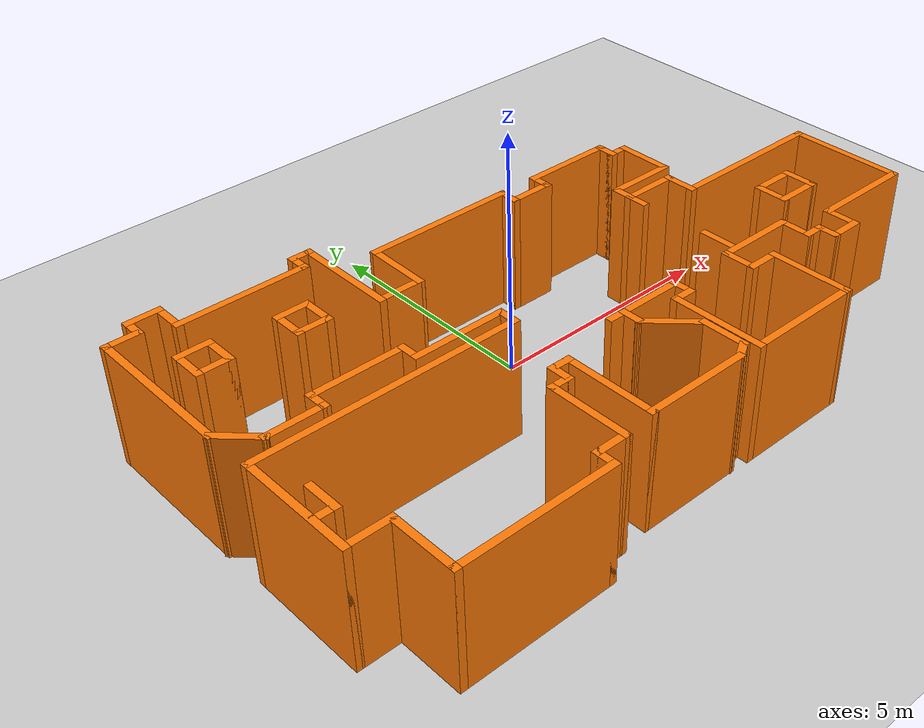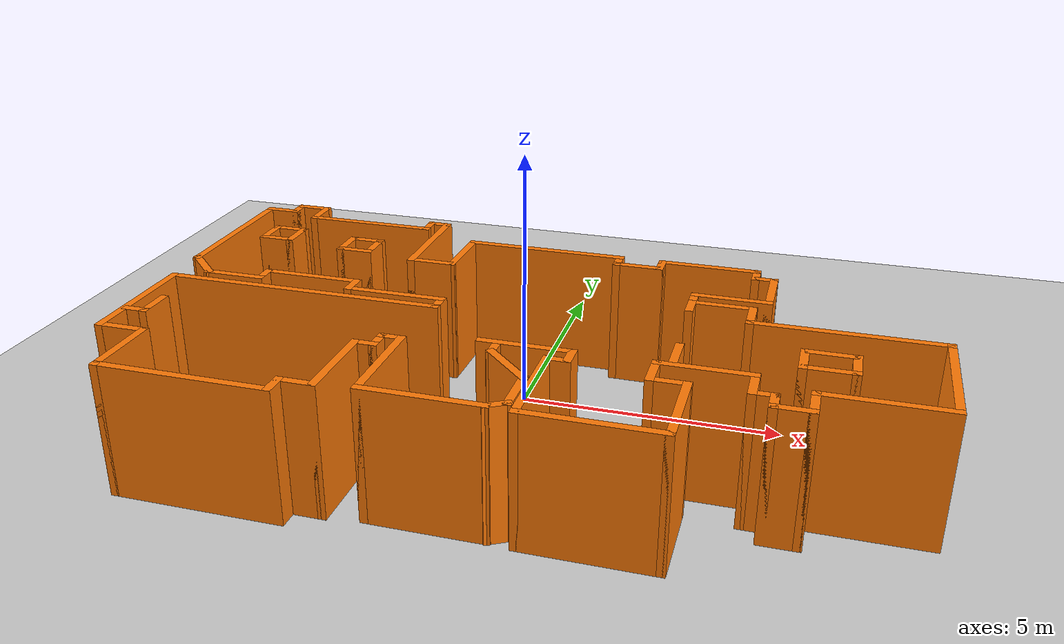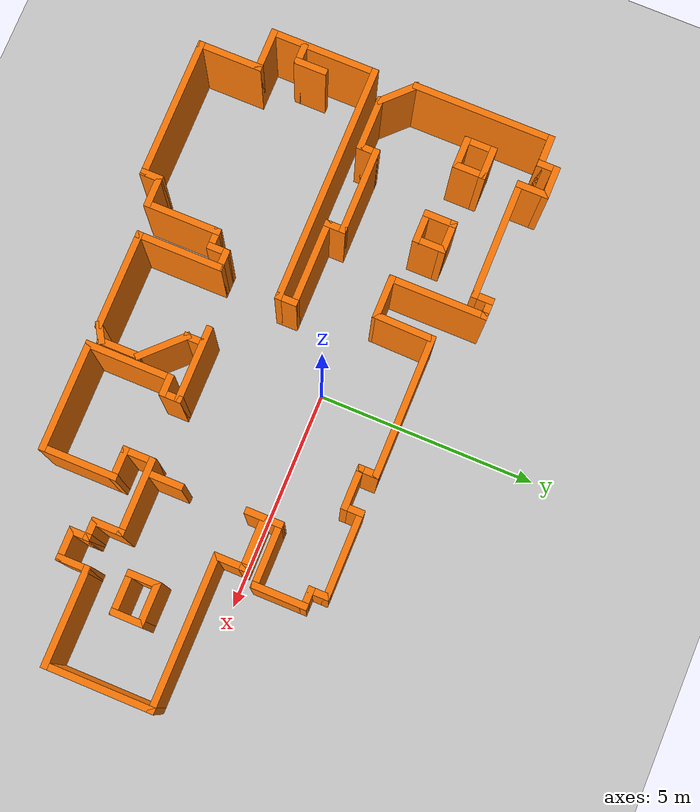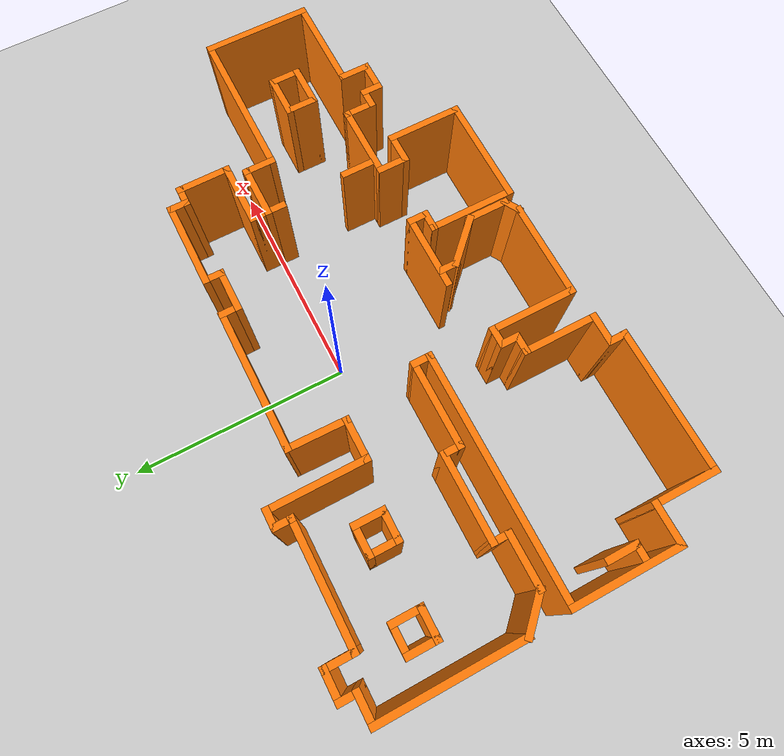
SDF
<sdf version="1.6">
 <world name="default">
  <model name="ground_plane">
   <static>1</static>
   <link name="link">
    <collision name="collision">
     <geometry><plane><normal>0 0 1</normal><size>100 100</size></plane></geometry>
     <surface>
      <contact><collide_bitmask>65535</collide_bitmask></contact>
      <friction><ode><mu>100</mu><mu2>50</mu2></ode></friction>
     </surface>
    </collision>
    <visual name="visual">
     <cast_shadows>0</cast_shadows>
     <geometry><plane><normal>0 0 1</normal><size>100 100</size></plane></geometry>
     <material>
      <script><uri>file://media/materials/scripts/gazebo.material</uri><name>Gazebo/Grey</name></script>
     </material>
    </visual>
   </link>
  </model>
  <model name="map_88">
   <pose>0.464336 -1.14312 0 0 -0 0</pose>
   <link name="Wall_1">
    <collision name="Wall_1_Collision">
     <geometry><box><size>0.5 0.15 2.5</size></box></geometry>
     <pose>0 0 1.25 0 -0 0</pose>
    </collision>
    <visual name="Wall_1_Visual">
     <pose>0 0 1.25 0 -0 0</pose>
     <geometry><box><size>0.5 0.15 2.5</size></box></geometry>
     <material>
      <script><uri>file://media/materials/scripts/gazebo.material</uri><name>Gazebo/Grey</name></script>
      <ambient>0.996078 0.47451 0.0196078 1</ambient>
     </material>
     <meta><layer>0</layer></meta>
    </visual>
    <pose>-3.14645 3.80052 0 0 -0 3.14159</pose>
   </link>
   <link name="Wall_10">
    <collision name="Wall_10_Collision">
     <geometry><box><size>1.25 0.15 2.5</size></box></geometry>
     <pose>0 0 1.25 0 -0 0</pose>
    </collision>
    <visual name="Wall_10_Visual">
     <pose>0 0 1.25 0 -0 0</pose>
     <geometry><box><size>1.25 0.15 2.5</size></box></geometry>
     <material>
      <script><uri>file://media/materials/scripts/gazebo.material</uri><name>Gazebo/Grey</name></script>
      <ambient>0.996078 0.47451 0.0196078 1</ambient>
     </material>
     <meta><layer>0</layer></meta>
    </visual>
    <pose>-5.97041 -0.00052 0 0 -0 0</pose>
   </link>
   <link name="Wall_100">
    <collision name="Wall_100_Collision">
     <geometry><box><size>0.75 0.15 2.5</size></box></geometry>
     <pose>0 0 1.25 0 -0 0</pose>
    </collision>
    <visual name="Wall_100_Visual">
     <pose>0 0 1.25 0 -0 0</pose>
     <geometry><box><size>0.75 0.15 2.5</size></box></geometry>
     <material>
      <script><uri>file://media/materials/scripts/gazebo.material</uri><name>Gazebo/Grey</name></script>
      <ambient>0.996078 0.47451 0.0196078 1</ambient>
     </material>
     <meta><layer>0</layer></meta>
    </visual>
    <pose>-4.27435 2.46761 0 0 -0 3.14159</pose>
   </link>
   <link name="Wall_11">
    <collision name="Wall_11_Collision">
     <geometry><box><size>0.5 0.15 2.5</size></box></geometry>
     <pose>0 0 1.25 0 -0 0</pose>
    </collision>
    <visual name="Wall_11_Visual">
     <pose>0 0 1.25 0 -0 0</pose>
     <geometry><box><size>0.5 0.15 2.5</size></box></geometry>
     <material>
      <script><uri>file://media/materials/scripts/gazebo.material</uri><name>Gazebo/Grey</name></script>
      <ambient>0.996078 0.47451 0.0196078 1</ambient>
     </material>
     <meta><layer>0</layer></meta>
    </visual>
    <pose>-5.42041 0.17448 0 0 -0 1.5708</pose>
   </link>
   <link name="Wall_110">
    <collision name="Wall_110_Collision">
     <geometry><box><size>1.75 0.15 2.5</size></box></geometry>
     <pose>0 0 1.25 0 -0 0</pose>
    </collision>
    <visual name="Wall_110_Visual">
     <pose>0 0 1.25 0 -0 0</pose>
     <geometry><box><size>1.75 0.15 2.5</size></box></geometry>
     <material>
      <script><uri>file://media/materials/scripts/gazebo.material</uri><name>Gazebo/Grey</name></script>
      <ambient>0.996078 0.47451 0.0196078 1</ambient>
     </material>
     <meta><layer>0</layer></meta>
    </visual>
    <pose>-2.52041 -2.90052 0 0 -0 1.5708</pose>
   </link>
   <link name="Wall_111">
    <collision name="Wall_111_Collision">
     <geometry><box><size>0.5 0.15 2.5</size></box></geometry>
     <pose>0 0 1.25 0 -0 0</pose>
    </collision>
    <visual name="Wall_111_Visual">
     <pose>0 0 1.25 0 -0 0</pose>
     <geometry><box><size>0.5 0.15 2.5</size></box></geometry>
     <material>
      <script><uri>file://media/materials/scripts/gazebo.material</uri><name>Gazebo/Grey</name></script>
      <ambient>0.996078 0.47451 0.0196078 1</ambient>
     </material>
     <meta><layer>0</layer></meta>
    </visual>
    <pose>-2.34541 -2.10052 0 0 -0 0</pose>
   </link>
   <link name="Wall_112">
    <collision name="Wall_112_Collision">
     <geometry><box><size>0.5 0.15 2.5</size></box></geometry>
     <pose>0 0 1.25 0 -0 0</pose>
    </collision>
    <visual name="Wall_112_Visual">
     <pose>0 0 1.25 0 -0 0</pose>
     <geometry><box><size>0.5 0.15 2.5</size></box></geometry>
     <material>
      <script><uri>file://media/materials/scripts/gazebo.material</uri><name>Gazebo/Grey</name></script>
      <ambient>0.996078 0.47451 0.0196078 1</ambient>
     </material>
     <meta><layer>0</layer></meta>
    </visual>
    <pose>-2.17041 -1.92552 0 0 -0 1.5708</pose>
   </link>
   <link name="Wall_113">
    <collision name="Wall_113_Collision">
     <geometry><box><size>0.5 0.15 2.5</size></box></geometry>
     <pose>0 0 1.25 0 -0 0</pose>
    </collision>
    <visual name="Wall_113_Visual">
     <pose>0 0 1.25 0 -0 0</pose>
     <geometry><box><size>0.5 0.15 2.5</size></box></geometry>
     <material>
      <script><uri>file://media/materials/scripts/gazebo.material</uri><name>Gazebo/Grey</name></script>
      <ambient>0.996078 0.47451 0.0196078 1</ambient>
     </material>
     <meta><layer>0</layer></meta>
    </visual>
    <pose>-1.99541 -1.75052 0 0 -0 0</pose>
   </link>
   <link name="Wall_114">
    <collision name="Wall_114_Collision">
     <geometry><box><size>2 0.15 2.5</size></box></geometry>
     <pose>0 0 1.25 0 -0 0</pose>
    </collision>
    <visual name="Wall_114_Visual">
     <pose>0 0 1.25 0 -0 0</pose>
     <geometry><box><size>2 0.15 2.5</size></box></geometry>
     <material>
      <script><uri>file://media/materials/scripts/gazebo.material</uri><name>Gazebo/Grey</name></script>
      <ambient>0.996078 0.47451 0.0196078 1</ambient>
     </material>
     <meta><layer>0</layer></meta>
    </visual>
    <pose>-1.82041 -2.67552 0 0 -0 -1.5708</pose>
   </link>
   <link name="Wall_12">
    <collision name="Wall_12_Collision">
     <geometry><box><size>2 0.15 2.5</size></box></geometry>
     <pose>0 0 1.25 0 -0 0</pose>
    </collision>
    <visual name="Wall_12_Visual">
     <pose>0 0 1.25 0 -0 0</pose>
     <geometry><box><size>2 0.15 2.5</size></box></geometry>
     <material>
      <script><uri>file://media/materials/scripts/gazebo.material</uri><name>Gazebo/Grey</name></script>
      <ambient>0.996078 0.47451 0.0196078 1</ambient>
     </material>
     <meta><layer>0</layer></meta>
    </visual>
    <pose>-4.49541 0.34948 0 0 -0 0</pose>
   </link>
   <link name="Wall_13">
    <collision name="Wall_13_Collision">
     <geometry><box><size>0.5 0.15 2.5</size></box></geometry>
     <pose>0 0 1.25 0 -0 0</pose>
    </collision>
    <visual name="Wall_13_Visual">
     <pose>0 0 1.25 0 -0 0</pose>
     <geometry><box><size>0.5 0.15 2.5</size></box></geometry>
     <material>
      <script><uri>file://media/materials/scripts/gazebo.material</uri><name>Gazebo/Grey</name></script>
      <ambient>0.996078 0.47451 0.0196078 1</ambient>
     </material>
     <meta><layer>0</layer></meta>
    </visual>
    <pose>-3.57041 0.17448 0 0 -0 -1.5708</pose>
   </link>
   <link name="Wall_14">
    <collision name="Wall_14_Collision">
     <geometry><box><size>2 0.15 2.5</size></box></geometry>
     <pose>0 0 1.25 0 -0 0</pose>
    </collision>
    <visual name="Wall_14_Visual">
     <pose>0 0 1.25 0 -0 0</pose>
     <geometry><box><size>2 0.15 2.5</size></box></geometry>
     <material>
      <script><uri>file://media/materials/scripts/gazebo.material</uri><name>Gazebo/Grey</name></script>
      <ambient>0.996078 0.47451 0.0196078 1</ambient>
     </material>
     <meta><layer>0</layer></meta>
    </visual>
    <pose>-2.64541 -0.00052 0 0 -0 0</pose>
   </link>
   <link name="Wall_15">
    <collision name="Wall_15_Collision">
     <geometry><box><size>0.5 0.15 2.5</size></box></geometry>
     <pose>0 0 1.25 0 -0 0</pose>
    </collision>
    <visual name="Wall_15_Visual">
     <pose>0 0 1.25 0 -0 0</pose>
     <geometry><box><size>0.5 0.15 2.5</size></box></geometry>
     <material>
      <script><uri>file://media/materials/scripts/gazebo.material</uri><name>Gazebo/Grey</name></script>
      <ambient>0.996078 0.47451 0.0196078 1</ambient>
     </material>
     <meta><layer>0</layer></meta>
    </visual>
    <pose>-1.72041 -0.17552 0 0 -0 -1.5708</pose>
   </link>
   <link name="Wall_16">
    <collision name="Wall_16_Collision">
     <geometry><box><size>5.5 0.15 2.5</size></box></geometry>
     <pose>0 0 1.25 0 -0 0</pose>
    </collision>
    <visual name="Wall_16_Visual">
     <pose>0 0 1.25 0 -0 0</pose>
     <geometry><box><size>5.5 0.15 2.5</size></box></geometry>
     <material>
      <script><uri>file://media/materials/scripts/gazebo.material</uri><name>Gazebo/Grey</name></script>
      <ambient>0.996078 0.47451 0.0196078 1</ambient>
     </material>
     <meta><layer>0</layer></meta>
    </visual>
    <pose>-4.39541 -0.35052 0 0 -0 3.14159</pose>
   </link>
   <link name="Wall_17">
    <collision name="Wall_17_Collision">
     <geometry><box><size>2.5 0.15 2.5</size></box></geometry>
     <pose>0 0 1.25 0 -0 0</pose>
    </collision>
    <visual name="Wall_17_Visual">
     <pose>0 0 1.25 0 -0 0</pose>
     <geometry><box><size>2.5 0.15 2.5</size></box></geometry>
     <material>
      <script><uri>file://media/materials/scripts/gazebo.material</uri><name>Gazebo/Grey</name></script>
      <ambient>0.996078 0.47451 0.0196078 1</ambient>
     </material>
     <meta><layer>0</layer></meta>
    </visual>
    <pose>-7.07041 -1.52552 0 0 -0 -1.5708</pose>
   </link>
   <link name="Wall_18">
    <collision name="Wall_18_Collision">
     <geometry><box><size>1 0.15 2.5</size></box></geometry>
     <pose>0 0 1.25 0 -0 0</pose>
    </collision>
    <visual name="Wall_18_Visual">
     <pose>0 0 1.25 0 -0 0</pose>
     <geometry><box><size>1 0.15 2.5</size></box></geometry>
     <material>
      <script><uri>file://media/materials/scripts/gazebo.material</uri><name>Gazebo/Grey</name></script>
      <ambient>0.996078 0.47451 0.0196078 1</ambient>
     </material>
     <meta><layer>0</layer></meta>
    </visual>
    <pose>-6.64541 -2.70052 0 0 -0 0</pose>
   </link>
   <link name="Wall_19">
    <collision name="Wall_19_Collision">
     <geometry><box><size>1.5 0.15 2.5</size></box></geometry>
     <pose>0 0 1.25 0 -0 0</pose>
    </collision>
    <visual name="Wall_19_Visual">
     <pose>0 0 1.25 0 -0 0</pose>
     <geometry><box><size>1.5 0.15 2.5</size></box></geometry>
     <material>
      <script><uri>file://media/materials/scripts/gazebo.material</uri><name>Gazebo/Grey</name></script>
      <ambient>0.996078 0.47451 0.0196078 1</ambient>
     </material>
     <meta><layer>0</layer></meta>
    </visual>
    <pose>-6.22041 -3.37552 0 0 -0 -1.5708</pose>
   </link>
   <link name="Wall_2">
    <collision name="Wall_2_Collision">
     <geometry><box><size>0.5 0.15 2.5</size></box></geometry>
     <pose>0 0 1.25 0 -0 0</pose>
    </collision>
    <visual name="Wall_2_Visual">
     <pose>0 0 1.25 0 -0 0</pose>
     <geometry><box><size>0.5 0.15 2.5</size></box></geometry>
     <material>
      <script><uri>file://media/materials/scripts/gazebo.material</uri><name>Gazebo/Grey</name></script>
      <ambient>0.996078 0.47451 0.0196078 1</ambient>
     </material>
     <meta><layer>0</layer></meta>
    </visual>
    <pose>-3.32145 3.62552 0 0 -0 -1.5708</pose>
   </link>
   <link name="Wall_20">
    <collision name="Wall_20_Collision">
     <geometry><box><size>3.25 0.15 2.5</size></box></geometry>
     <pose>0 0 1.25 0 -0 0</pose>
    </collision>
    <visual name="Wall_20_Visual">
     <pose>0 0 1.25 0 -0 0</pose>
     <geometry><box><size>3.25 0.15 2.5</size></box></geometry>
     <material>
      <script><uri>file://media/materials/scripts/gazebo.material</uri><name>Gazebo/Grey</name></script>
      <ambient>0.996078 0.47451 0.0196078 1</ambient>
     </material>
     <meta><layer>0</layer></meta>
    </visual>
    <pose>-4.67041 -4.05052 0 0 -0 0</pose>
   </link>
   <link name="Wall_21">
    <collision name="Wall_21_Collision">
     <geometry><box><size>0.5 0.15 2.5</size></box></geometry>
     <pose>0 0 1.25 0 -0 0</pose>
    </collision>
    <visual name="Wall_21_Visual">
     <pose>0 0 1.25 0 -0 0</pose>
     <geometry><box><size>0.5 0.15 2.5</size></box></geometry>
     <material>
      <script><uri>file://media/materials/scripts/gazebo.material</uri><name>Gazebo/Grey</name></script>
      <ambient>0.996078 0.47451 0.0196078 1</ambient>
     </material>
     <meta><layer>0</layer></meta>
    </visual>
    <pose>-3.12041 -3.87552 0 0 -0 1.5708</pose>
   </link>
   <link name="Wall_22">
    <collision name="Wall_22_Collision">
     <geometry><box><size>0.75 0.15 2.5</size></box></geometry>
     <pose>0 0 1.25 0 -0 0</pose>
    </collision>
    <visual name="Wall_22_Visual">
     <pose>0 0 1.25 0 -0 0</pose>
     <geometry><box><size>0.75 0.15 2.5</size></box></geometry>
     <material>
      <script><uri>file://media/materials/scripts/gazebo.material</uri><name>Gazebo/Grey</name></script>
      <ambient>0.996078 0.47451 0.0196078 1</ambient>
     </material>
     <meta><layer>0</layer></meta>
    </visual>
    <pose>-2.82041 -3.70052 0 0 -0 0</pose>
   </link>
   <link name="Wall_28">
    <collision name="Wall_28_Collision">
     <geometry><box><size>2.25 0.15 2.5</size></box></geometry>
     <pose>0 0 1.25 0 -0 0</pose>
    </collision>
    <visual name="Wall_28_Visual">
     <pose>0 0 1.25 0 -0 0</pose>
     <geometry><box><size>2.25 0.15 2.5</size></box></geometry>
     <material>
      <script><uri>file://media/materials/scripts/gazebo.material</uri><name>Gazebo/Grey</name></script>
      <ambient>0.996078 0.47451 0.0196078 1</ambient>
     </material>
     <meta><layer>0</layer></meta>
    </visual>
    <pose>-0.770411 -3.60052 0 0 -0 0</pose>
   </link>
   <link name="Wall_29">
    <collision name="Wall_29_Collision">
     <geometry><box><size>0.5 0.15 2.5</size></box></geometry>
     <pose>0 0 1.25 0 -0 0</pose>
    </collision>
    <visual name="Wall_29_Visual">
     <pose>0 0 1.25 0 -0 0</pose>
     <geometry><box><size>0.5 0.15 2.5</size></box></geometry>
     <material>
      <script><uri>file://media/materials/scripts/gazebo.material</uri><name>Gazebo/Grey</name></script>
      <ambient>0.996078 0.47451 0.0196078 1</ambient>
     </material>
     <meta><layer>0</layer></meta>
    </visual>
    <pose>0.431144 -3.51302 0 0 -0 0.523599</pose>
   </link>
   <link name="Wall_3">
    <collision name="Wall_3_Collision">
     <geometry><box><size>2.75 0.15 2.5</size></box></geometry>
     <pose>0 0 1.25 0 -0 0</pose>
    </collision>
    <visual name="Wall_3_Visual">
     <pose>0 0 1.25 0 -0 0</pose>
     <geometry><box><size>2.75 0.15 2.5</size></box></geometry>
     <material>
      <script><uri>file://media/materials/scripts/gazebo.material</uri><name>Gazebo/Grey</name></script>
      <ambient>0.996078 0.47451 0.0196078 1</ambient>
     </material>
     <meta><layer>0</layer></meta>
    </visual>
    <pose>-4.62145 3.45052 0 0 -0 3.14159</pose>
   </link>
   <link name="Wall_30">
    <collision name="Wall_30_Collision">
     <geometry><box><size>1 0.15 2.5</size></box></geometry>
     <pose>0 0 1.25 0 -0 0</pose>
    </collision>
    <visual name="Wall_30_Visual">
     <pose>0 0 1.25 0 -0 0</pose>
     <geometry><box><size>1 0.15 2.5</size></box></geometry>
     <material>
      <script><uri>file://media/materials/scripts/gazebo.material</uri><name>Gazebo/Grey</name></script>
      <ambient>0.996078 0.47451 0.0196078 1</ambient>
     </material>
     <meta><layer>0</layer></meta>
    </visual>
    <pose>0.582698 -3.00052 0 0 -0 1.5708</pose>
   </link>
   <link name="Wall_31">
    <collision name="Wall_31_Collision">
     <geometry><box><size>1.25 0.15 2.5</size></box></geometry>
     <pose>0 0 1.25 0 -0 0</pose>
    </collision>
    <visual name="Wall_31_Visual">
     <pose>0 0 1.25 0 -0 0</pose>
     <geometry><box><size>1.25 0.15 2.5</size></box></geometry>
     <material>
      <script><uri>file://media/materials/scripts/gazebo.material</uri><name>Gazebo/Grey</name></script>
      <ambient>0.996078 0.47451 0.0196078 1</ambient>
     </material>
     <meta><layer>0</layer></meta>
    </visual>
    <pose>0.193789 -2.18661 0 0 -0 2.35619</pose>
   </link>
   <link name="Wall_32">
    <collision name="Wall_32_Collision">
     <geometry><box><size>0.5 0.15 2.5</size></box></geometry>
     <pose>0 0 1.25 0 -0 0</pose>
    </collision>
    <visual name="Wall_32_Visual">
     <pose>0 0 1.25 0 -0 0</pose>
     <geometry><box><size>0.5 0.15 2.5</size></box></geometry>
     <material>
      <script><uri>file://media/materials/scripts/gazebo.material</uri><name>Gazebo/Grey</name></script>
      <ambient>0.996078 0.47451 0.0196078 1</ambient>
     </material>
     <meta><layer>0</layer></meta>
    </visual>
    <pose>-0.19512 -1.6227 0 0 -0 1.5708</pose>
   </link>
   <link name="Wall_34">
    <collision name="Wall_34_Collision">
     <geometry><box><size>1.75 0.15 2.5</size></box></geometry>
     <pose>0 0 1.25 0 -0 0</pose>
    </collision>
    <visual name="Wall_34_Visual">
     <pose>0 0 1.25 0 -0 0</pose>
     <geometry><box><size>1.75 0.15 2.5</size></box></geometry>
     <material>
      <script><uri>file://media/materials/scripts/gazebo.material</uri><name>Gazebo/Grey</name></script>
      <ambient>0.996078 0.47451 0.0196078 1</ambient>
     </material>
     <meta><layer>0</layer></meta>
    </visual>
    <pose>0.302518 -1.4372 0 0 -0 0</pose>
   </link>
   <link name="Wall_35">
    <collision name="Wall_35_Collision">
     <geometry><box><size>0.5 0.15 2.5</size></box></geometry>
     <pose>0 0 1.25 0 -0 0</pose>
    </collision>
    <visual name="Wall_35_Visual">
     <pose>0 0 1.25 0 -0 0</pose>
     <geometry><box><size>0.5 0.15 2.5</size></box></geometry>
     <material>
      <script><uri>file://media/materials/scripts/gazebo.material</uri><name>Gazebo/Grey</name></script>
      <ambient>0.996078 0.47451 0.0196078 1</ambient>
     </material>
     <meta><layer>0</layer></meta>
    </visual>
    <pose>1.10252 -1.6122 0 0 -0 -1.5708</pose>
   </link>
   <link name="Wall_36">
    <collision name="Wall_36_Collision">
     <geometry><box><size>0.5 0.15 2.5</size></box></geometry>
     <pose>0 0 1.25 0 -0 0</pose>
    </collision>
    <visual name="Wall_36_Visual">
     <pose>0 0 1.25 0 -0 0</pose>
     <geometry><box><size>0.5 0.15 2.5</size></box></geometry>
     <material>
      <script><uri>file://media/materials/scripts/gazebo.material</uri><name>Gazebo/Grey</name></script>
      <ambient>0.996078 0.47451 0.0196078 1</ambient>
     </material>
     <meta><layer>0</layer></meta>
    </visual>
    <pose>0.927518 -1.7872 0 0 -0 3.14159</pose>
   </link>
   <link name="Wall_37">
    <collision name="Wall_37_Collision">
     <geometry><box><size>2 0.15 2.5</size></box></geometry>
     <pose>0 0 1.25 0 -0 0</pose>
    </collision>
    <visual name="Wall_37_Visual">
     <pose>0 0 1.25 0 -0 0</pose>
     <geometry><box><size>2 0.15 2.5</size></box></geometry>
     <material>
      <script><uri>file://media/materials/scripts/gazebo.material</uri><name>Gazebo/Grey</name></script>
      <ambient>0.996078 0.47451 0.0196078 1</ambient>
     </material>
     <meta><layer>0</layer></meta>
    </visual>
    <pose>0.752518 -2.7122 0 0 -0 -1.5708</pose>
   </link>
   <link name="Wall_38">
    <collision name="Wall_38_Collision">
     <geometry><box><size>2.5 0.15 2.5</size></box></geometry>
     <pose>0 0 1.25 0 -0 0</pose>
    </collision>
    <visual name="Wall_38_Visual">
     <pose>0 0 1.25 0 -0 0</pose>
     <geometry><box><size>2.5 0.15 2.5</size></box></geometry>
     <material>
      <script><uri>file://media/materials/scripts/gazebo.material</uri><name>Gazebo/Grey</name></script>
      <ambient>0.996078 0.47451 0.0196078 1</ambient>
     </material>
     <meta><layer>0</layer></meta>
    </visual>
    <pose>1.92752 -3.6372 0 0 -0 0</pose>
   </link>
   <link name="Wall_39">
    <collision name="Wall_39_Collision">
     <geometry><box><size>1.75 0.15 2.5</size></box></geometry>
     <pose>0 0 1.25 0 -0 0</pose>
    </collision>
    <visual name="Wall_39_Visual">
     <pose>0 0 1.25 0 -0 0</pose>
     <geometry><box><size>1.75 0.15 2.5</size></box></geometry>
     <material>
      <script><uri>file://media/materials/scripts/gazebo.material</uri><name>Gazebo/Grey</name></script>
      <ambient>0.996078 0.47451 0.0196078 1</ambient>
     </material>
     <meta><layer>0</layer></meta>
    </visual>
    <pose>3.10252 -2.8372 0 0 -0 1.5708</pose>
   </link>
   <link name="Wall_4">
    <collision name="Wall_4_Collision">
     <geometry><box><size>0.75 0.15 2.5</size></box></geometry>
     <pose>0 0 1.25 0 -0 0</pose>
    </collision>
    <visual name="Wall_4_Visual">
     <pose>0 0 1.25 0 -0 0</pose>
     <geometry><box><size>0.75 0.15 2.5</size></box></geometry>
     <material>
      <script><uri>file://media/materials/scripts/gazebo.material</uri><name>Gazebo/Grey</name></script>
      <ambient>0.996078 0.47451 0.0196078 1</ambient>
     </material>
     <meta><layer>0</layer></meta>
    </visual>
    <pose>-5.92145 3.75052 0 0 -0 1.5708</pose>
   </link>
   <link name="Wall_40">
    <collision name="Wall_40_Collision">
     <geometry><box><size>0.75 0.15 2.5</size></box></geometry>
     <pose>0 0 1.25 0 -0 0</pose>
    </collision>
    <visual name="Wall_40_Visual">
     <pose>0 0 1.25 0 -0 0</pose>
     <geometry><box><size>0.75 0.15 2.5</size></box></geometry>
     <material>
      <script><uri>file://media/materials/scripts/gazebo.material</uri><name>Gazebo/Grey</name></script>
      <ambient>0.996078 0.47451 0.0196078 1</ambient>
     </material>
     <meta><layer>0</layer></meta>
    </visual>
    <pose>2.80252 -2.0372 0 0 -0 3.14159</pose>
   </link>
   <link name="Wall_41">
    <collision name="Wall_41_Collision">
     <geometry><box><size>0.75 0.15 2.5</size></box></geometry>
     <pose>0 0 1.25 0 -0 0</pose>
    </collision>
    <visual name="Wall_41_Visual">
     <pose>0 0 1.25 0 -0 0</pose>
     <geometry><box><size>0.75 0.15 2.5</size></box></geometry>
     <material>
      <script><uri>file://media/materials/scripts/gazebo.material</uri><name>Gazebo/Grey</name></script>
      <ambient>0.996078 0.47451 0.0196078 1</ambient>
     </material>
     <meta><layer>0</layer></meta>
    </visual>
    <pose>2.50252 -1.7372 0 0 -0 1.5708</pose>
   </link>
   <link name="Wall_42">
    <collision name="Wall_42_Collision">
     <geometry><box><size>1.75 0.15 2.5</size></box></geometry>
     <pose>0 0 1.25 0 -0 0</pose>
    </collision>
    <visual name="Wall_42_Visual">
     <pose>0 0 1.25 0 -0 0</pose>
     <geometry><box><size>1.75 0.15 2.5</size></box></geometry>
     <material>
      <script><uri>file://media/materials/scripts/gazebo.material</uri><name>Gazebo/Grey</name></script>
      <ambient>0.996078 0.47451 0.0196078 1</ambient>
     </material>
     <meta><layer>0</layer></meta>
    </visual>
    <pose>3.30252 -1.4372 0 0 -0 0</pose>
   </link>
   <link name="Wall_43">
    <collision name="Wall_43_Collision">
     <geometry><box><size>0.75 0.15 2.5</size></box></geometry>
     <pose>0 0 1.25 0 -0 0</pose>
    </collision>
    <visual name="Wall_43_Visual">
     <pose>0 0 1.25 0 -0 0</pose>
     <geometry><box><size>0.75 0.15 2.5</size></box></geometry>
     <material>
      <script><uri>file://media/materials/scripts/gazebo.material</uri><name>Gazebo/Grey</name></script>
      <ambient>0.996078 0.47451 0.0196078 1</ambient>
     </material>
     <meta><layer>0</layer></meta>
    </visual>
    <pose>4.10252 -1.7372 0 0 -0 -1.5708</pose>
   </link>
   <link name="Wall_44">
    <collision name="Wall_44_Collision">
     <geometry><box><size>0.5 0.15 2.5</size></box></geometry>
     <pose>0 0 1.25 0 -0 0</pose>
    </collision>
    <visual name="Wall_44_Visual">
     <pose>0 0 1.25 0 -0 0</pose>
     <geometry><box><size>0.5 0.15 2.5</size></box></geometry>
     <material>
      <script><uri>file://media/materials/scripts/gazebo.material</uri><name>Gazebo/Grey</name></script>
      <ambient>0.996078 0.47451 0.0196078 1</ambient>
     </material>
     <meta><layer>0</layer></meta>
    </visual>
    <pose>4.27752 -2.0372 0 0 -0 0</pose>
   </link>
   <link name="Wall_45">
    <collision name="Wall_45_Collision">
     <geometry><box><size>0.5 0.15 2.5</size></box></geometry>
     <pose>0 0 1.25 0 -0 0</pose>
    </collision>
    <visual name="Wall_45_Visual">
     <pose>0 0 1.25 0 -0 0</pose>
     <geometry><box><size>0.5 0.15 2.5</size></box></geometry>
     <material>
      <script><uri>file://media/materials/scripts/gazebo.material</uri><name>Gazebo/Grey</name></script>
      <ambient>0.996078 0.47451 0.0196078 1</ambient>
     </material>
     <meta><layer>0</layer></meta>
    </visual>
    <pose>4.45252 -2.2122 0 0 -0 -1.5708</pose>
   </link>
   <link name="Wall_46">
    <collision name="Wall_46_Collision">
     <geometry><box><size>0.75 0.15 2.5</size></box></geometry>
     <pose>0 0 1.25 0 -0 0</pose>
    </collision>
    <visual name="Wall_46_Visual">
     <pose>0 0 1.25 0 -0 0</pose>
     <geometry><box><size>0.75 0.15 2.5</size></box></geometry>
     <material>
      <script><uri>file://media/materials/scripts/gazebo.material</uri><name>Gazebo/Grey</name></script>
      <ambient>0.996078 0.47451 0.0196078 1</ambient>
     </material>
     <meta><layer>0</layer></meta>
    </visual>
    <pose>4.75252 -2.3872 0 0 -0 0</pose>
   </link>
   <link name="Wall_47">
    <collision name="Wall_47_Collision">
     <geometry><box><size>0.75 0.15 2.5</size></box></geometry>
     <pose>0 0 1.25 0 -0 0</pose>
    </collision>
    <visual name="Wall_47_Visual">
     <pose>0 0 1.25 0 -0 0</pose>
     <geometry><box><size>0.75 0.15 2.5</size></box></geometry>
     <material>
      <script><uri>file://media/materials/scripts/gazebo.material</uri><name>Gazebo/Grey</name></script>
      <ambient>0.996078 0.47451 0.0196078 1</ambient>
     </material>
     <meta><layer>0</layer></meta>
    </visual>
    <pose>5.05252 -2.0872 0 0 -0 1.5708</pose>
   </link>
   <link name="Wall_48">
    <collision name="Wall_48_Collision">
     <geometry><box><size>2.25 0.15 2.5</size></box></geometry>
     <pose>0 0 1.25 0 -0 0</pose>
    </collision>
    <visual name="Wall_48_Visual">
     <pose>0 0 1.25 0 -0 0</pose>
     <geometry><box><size>2.25 0.15 2.5</size></box></geometry>
     <material>
      <script><uri>file://media/materials/scripts/gazebo.material</uri><name>Gazebo/Grey</name></script>
      <ambient>0.996078 0.47451 0.0196078 1</ambient>
     </material>
     <meta><layer>0</layer></meta>
    </visual>
    <pose>6.10252 -1.7872 0 0 -0 0</pose>
   </link>
   <link name="Wall_49">
    <collision name="Wall_49_Collision">
     <geometry><box><size>2.5 0.15 2.5</size></box></geometry>
     <pose>0 0 1.25 0 -0 0</pose>
    </collision>
    <visual name="Wall_49_Visual">
     <pose>0 0 1.25 0 -0 0</pose>
     <geometry><box><size>2.5 0.15 2.5</size></box></geometry>
     <material>
      <script><uri>file://media/materials/scripts/gazebo.material</uri><name>Gazebo/Grey</name></script>
      <ambient>0.996078 0.47451 0.0196078 1</ambient>
     </material>
     <meta><layer>0</layer></meta>
    </visual>
    <pose>7.15252 -0.612197 0 0 -0 1.5708</pose>
   </link>
   <link name="Wall_5">
    <collision name="Wall_5_Collision">
     <geometry><box><size>0.75 0.15 2.5</size></box></geometry>
     <pose>0 0 1.25 0 -0 0</pose>
    </collision>
    <visual name="Wall_5_Visual">
     <pose>0 0 1.25 0 -0 0</pose>
     <geometry><box><size>0.75 0.15 2.5</size></box></geometry>
     <material>
      <script><uri>file://media/materials/scripts/gazebo.material</uri><name>Gazebo/Grey</name></script>
      <ambient>0.996078 0.47451 0.0196078 1</ambient>
     </material>
     <meta><layer>0</layer></meta>
    </visual>
    <pose>-6.22145 4.05052 0 0 -0 3.14159</pose>
   </link>
   <link name="Wall_50">
    <collision name="Wall_50_Collision">
     <geometry><box><size>3.5 0.15 2.5</size></box></geometry>
     <pose>0 0 1.25 0 -0 0</pose>
    </collision>
    <visual name="Wall_50_Visual">
     <pose>0 0 1.25 0 -0 0</pose>
     <geometry><box><size>3.5 0.15 2.5</size></box></geometry>
     <material>
      <script><uri>file://media/materials/scripts/gazebo.material</uri><name>Gazebo/Grey</name></script>
      <ambient>0.996078 0.47451 0.0196078 1</ambient>
     </material>
     <meta><layer>0</layer></meta>
    </visual>
    <pose>5.47752 0.562803 0 0 -0 3.14159</pose>
   </link>
   <link name="Wall_51">
    <collision name="Wall_51_Collision">
     <geometry><box><size>0.75 0.15 2.5</size></box></geometry>
     <pose>0 0 1.25 0 -0 0</pose>
    </collision>
    <visual name="Wall_51_Visual">
     <pose>0 0 1.25 0 -0 0</pose>
     <geometry><box><size>0.75 0.15 2.5</size></box></geometry>
     <material>
      <script><uri>file://media/materials/scripts/gazebo.material</uri><name>Gazebo/Grey</name></script>
      <ambient>0.996078 0.47451 0.0196078 1</ambient>
     </material>
     <meta><layer>0</layer></meta>
    </visual>
    <pose>3.80252 0.862803 0 0 -0 1.5708</pose>
   </link>
   <link name="Wall_52">
    <collision name="Wall_52_Collision">
     <geometry><box><size>1.25 0.15 2.5</size></box></geometry>
     <pose>0 0 1.25 0 -0 0</pose>
    </collision>
    <visual name="Wall_52_Visual">
     <pose>0 0 1.25 0 -0 0</pose>
     <geometry><box><size>1.25 0.15 2.5</size></box></geometry>
     <material>
      <script><uri>file://media/materials/scripts/gazebo.material</uri><name>Gazebo/Grey</name></script>
      <ambient>0.996078 0.47451 0.0196078 1</ambient>
     </material>
     <meta><layer>0</layer></meta>
    </visual>
    <pose>3.25252 1.1628 0 0 -0 3.14159</pose>
   </link>
   <link name="Wall_57">
    <collision name="Wall_57_Collision">
     <geometry><box><size>0.5 0.15 2.5</size></box></geometry>
     <pose>0 0 1.25 0 -0 0</pose>
    </collision>
    <visual name="Wall_57_Visual">
     <pose>0 0 1.25 0 -0 0</pose>
     <geometry><box><size>0.5 0.15 2.5</size></box></geometry>
     <material>
      <script><uri>file://media/materials/scripts/gazebo.material</uri><name>Gazebo/Grey</name></script>
      <ambient>0.996078 0.47451 0.0196078 1</ambient>
     </material>
     <meta><layer>0</layer></meta>
    </visual>
    <pose>2.70252 1.3378 0 0 -0 1.5708</pose>
   </link>
   <link name="Wall_58">
    <collision name="Wall_58_Collision">
     <geometry><box><size>1.5 0.15 2.5</size></box></geometry>
     <pose>0 0 1.25 0 -0 0</pose>
    </collision>
    <visual name="Wall_58_Visual">
     <pose>0 0 1.25 0 -0 0</pose>
     <geometry><box><size>1.5 0.15 2.5</size></box></geometry>
     <material>
      <script><uri>file://media/materials/scripts/gazebo.material</uri><name>Gazebo/Grey</name></script>
      <ambient>0.996078 0.47451 0.0196078 1</ambient>
     </material>
     <meta><layer>0</layer></meta>
    </visual>
    <pose>3.37752 1.5128 0 0 -0 0</pose>
   </link>
   <link name="Wall_59">
    <collision name="Wall_59_Collision">
     <geometry><box><size>1.25 0.15 2.5</size></box></geometry>
     <pose>0 0 1.25 0 -0 0</pose>
    </collision>
    <visual name="Wall_59_Visual">
     <pose>0 0 1.25 0 -0 0</pose>
     <geometry><box><size>1.25 0.15 2.5</size></box></geometry>
     <material>
      <script><uri>file://media/materials/scripts/gazebo.material</uri><name>Gazebo/Grey</name></script>
      <ambient>0.996078 0.47451 0.0196078 1</ambient>
     </material>
     <meta><layer>0</layer></meta>
    </visual>
    <pose>4.05252 2.0628 0 0 -0 1.5708</pose>
   </link>
   <link name="Wall_6">
    <collision name="Wall_6_Collision">
     <geometry><box><size>0.5 0.15 2.5</size></box></geometry>
     <pose>0 0 1.25 0 -0 0</pose>
    </collision>
    <visual name="Wall_6_Visual">
     <pose>0 0 1.25 0 -0 0</pose>
     <geometry><box><size>0.5 0.15 2.5</size></box></geometry>
     <material>
      <script><uri>file://media/materials/scripts/gazebo.material</uri><name>Gazebo/Grey</name></script>
      <ambient>0.996078 0.47451 0.0196078 1</ambient>
     </material>
     <meta><layer>0</layer></meta>
    </visual>
    <pose>-6.52145 3.87552 0 0 -0 -1.5708</pose>
   </link>
   <link name="Wall_60">
    <collision name="Wall_60_Collision">
     <geometry><box><size>0.5 0.15 2.5</size></box></geometry>
     <pose>0 0 1.25 0 -0 0</pose>
    </collision>
    <visual name="Wall_60_Visual">
     <pose>0 0 1.25 0 -0 0</pose>
     <geometry><box><size>0.5 0.15 2.5</size></box></geometry>
     <material>
      <script><uri>file://media/materials/scripts/gazebo.material</uri><name>Gazebo/Grey</name></script>
      <ambient>0.996078 0.47451 0.0196078 1</ambient>
     </material>
     <meta><layer>0</layer></meta>
    </visual>
    <pose>3.87752 2.6128 0 0 -0 3.14159</pose>
   </link>
   <link name="Wall_61">
    <collision name="Wall_61_Collision">
     <geometry><box><size>0.5 0.15 2.5</size></box></geometry>
     <pose>0 0 1.25 0 -0 0</pose>
    </collision>
    <visual name="Wall_61_Visual">
     <pose>0 0 1.25 0 -0 0</pose>
     <geometry><box><size>0.5 0.15 2.5</size></box></geometry>
     <material>
      <script><uri>file://media/materials/scripts/gazebo.material</uri><name>Gazebo/Grey</name></script>
      <ambient>0.996078 0.47451 0.0196078 1</ambient>
     </material>
     <meta><layer>0</layer></meta>
    </visual>
    <pose>3.70252 2.7878 0 0 -0 1.5708</pose>
   </link>
   <link name="Wall_62">
    <collision name="Wall_62_Collision">
     <geometry><box><size>2 0.15 2.5</size></box></geometry>
     <pose>0 0 1.25 0 -0 0</pose>
    </collision>
    <visual name="Wall_62_Visual">
     <pose>0 0 1.25 0 -0 0</pose>
     <geometry><box><size>2 0.15 2.5</size></box></geometry>
     <material>
      <script><uri>file://media/materials/scripts/gazebo.material</uri><name>Gazebo/Grey</name></script>
      <ambient>0.996078 0.47451 0.0196078 1</ambient>
     </material>
     <meta><layer>0</layer></meta>
    </visual>
    <pose>2.77752 2.9628 0 0 -0 3.14159</pose>
   </link>
   <link name="Wall_63">
    <collision name="Wall_63_Collision">
     <geometry><box><size>0.5 0.15 2.5</size></box></geometry>
     <pose>0 0 1.25 0 -0 0</pose>
    </collision>
    <visual name="Wall_63_Visual">
     <pose>0 0 1.25 0 -0 0</pose>
     <geometry><box><size>0.5 0.15 2.5</size></box></geometry>
     <material>
      <script><uri>file://media/materials/scripts/gazebo.material</uri><name>Gazebo/Grey</name></script>
      <ambient>0.996078 0.47451 0.0196078 1</ambient>
     </material>
     <meta><layer>0</layer></meta>
    </visual>
    <pose>1.85252 2.7878 0 0 -0 -1.5708</pose>
   </link>
   <link name="Wall_64">
    <collision name="Wall_64_Collision">
     <geometry><box><size>1 0.15 2.5</size></box></geometry>
     <pose>0 0 1.25 0 -0 0</pose>
    </collision>
    <visual name="Wall_64_Visual">
     <pose>0 0 1.25 0 -0 0</pose>
     <geometry><box><size>1 0.15 2.5</size></box></geometry>
     <material>
      <script><uri>file://media/materials/scripts/gazebo.material</uri><name>Gazebo/Grey</name></script>
      <ambient>0.996078 0.47451 0.0196078 1</ambient>
     </material>
     <meta><layer>0</layer></meta>
    </visual>
    <pose>1.42752 2.6128 0 0 -0 3.14159</pose>
   </link>
   <link name="Wall_65">
    <collision name="Wall_65_Collision">
     <geometry><box><size>0.5 0.15 2.5</size></box></geometry>
     <pose>0 0 1.25 0 -0 0</pose>
    </collision>
    <visual name="Wall_65_Visual">
     <pose>0 0 1.25 0 -0 0</pose>
     <geometry><box><size>0.5 0.15 2.5</size></box></geometry>
     <material>
      <script><uri>file://media/materials/scripts/gazebo.material</uri><name>Gazebo/Grey</name></script>
      <ambient>0.996078 0.47451 0.0196078 1</ambient>
     </material>
     <meta><layer>0</layer></meta>
    </visual>
    <pose>1.00252 2.7878 0 0 -0 1.5708</pose>
   </link>
   <link name="Wall_66">
    <collision name="Wall_66_Collision">
     <geometry><box><size>3.25 0.15 2.5</size></box></geometry>
     <pose>0 0 1.25 0 -0 0</pose>
    </collision>
    <visual name="Wall_66_Visual">
     <pose>0 0 1.25 0 -0 0</pose>
     <geometry><box><size>3.25 0.15 2.5</size></box></geometry>
     <material>
      <script><uri>file://media/materials/scripts/gazebo.material</uri><name>Gazebo/Grey</name></script>
      <ambient>0.996078 0.47451 0.0196078 1</ambient>
     </material>
     <meta><layer>0</layer></meta>
    </visual>
    <pose>-0.547482 2.9628 0 0 -0 3.14159</pose>
   </link>
   <link name="Wall_7">
    <collision name="Wall_7_Collision">
     <geometry><box><size>0.75 0.15 2.5</size></box></geometry>
     <pose>0 0 1.25 0 -0 0</pose>
    </collision>
    <visual name="Wall_7_Visual">
     <pose>0 0 1.25 0 -0 0</pose>
     <geometry><box><size>0.75 0.15 2.5</size></box></geometry>
     <material>
      <script><uri>file://media/materials/scripts/gazebo.material</uri><name>Gazebo/Grey</name></script>
      <ambient>0.996078 0.47451 0.0196078 1</ambient>
     </material>
     <meta><layer>0</layer></meta>
    </visual>
    <pose>-6.82145 3.70052 0 0 -0 3.14159</pose>
   </link>
   <link name="Wall_72">
    <collision name="Wall_72_Collision">
     <geometry><box><size>2.25 0.15 2.5</size></box></geometry>
     <pose>0 0 1.25 0 -0 0</pose>
    </collision>
    <visual name="Wall_72_Visual">
     <pose>0 0 1.25 0 -0 0</pose>
     <geometry><box><size>2.25 0.15 2.5</size></box></geometry>
     <material>
      <script><uri>file://media/materials/scripts/gazebo.material</uri><name>Gazebo/Grey</name></script>
      <ambient>0.996078 0.47451 0.0196078 1</ambient>
     </material>
     <meta><layer>0</layer></meta>
    </visual>
    <pose>-2.97145 2.75052 0 0 -0 -1.5708</pose>
   </link>
   <link name="Wall_74">
    <collision name="Wall_74_Collision">
     <geometry><box><size>1 0.15 2.5</size></box></geometry>
     <pose>0 0 1.25 0 -0 0</pose>
    </collision>
    <visual name="Wall_74_Visual">
     <pose>0 0 1.25 0 -0 0</pose>
     <geometry><box><size>1 0.15 2.5</size></box></geometry>
     <material>
      <script><uri>file://media/materials/scripts/gazebo.material</uri><name>Gazebo/Grey</name></script>
      <ambient>0.996078 0.47451 0.0196078 1</ambient>
     </material>
     <meta><layer>0</layer></meta>
    </visual>
    <pose>-2.54645 1.70052 0 0 -0 0</pose>
   </link>
   <link name="Wall_75">
    <collision name="Wall_75_Collision">
     <geometry><box><size>1.41251 0.15 2.5</size></box></geometry>
     <pose>0 0 1.25 0 -0 0</pose>
    </collision>
    <visual name="Wall_75_Visual">
     <pose>0 0 1.25 0 -0 0</pose>
     <geometry><box><size>1.41251 0.15 2.5</size></box></geometry>
     <material>
      <script><uri>file://media/materials/scripts/gazebo.material</uri><name>Gazebo/Grey</name></script>
      <ambient>0.996078 0.47451 0.0196078 1</ambient>
     </material>
     <meta><layer>0</layer></meta>
    </visual>
    <pose>-2.10947 2.33166 0 0 -0 1.55181</pose>
   </link>
   <link name="Wall_77">
    <collision name="Wall_77_Collision">
     <geometry><box><size>0.5 0.15 2.5</size></box></geometry>
     <pose>0 0 1.25 0 -0 0</pose>
    </collision>
    <visual name="Wall_77_Visual">
     <pose>0 0 1.25 0 -0 0</pose>
     <geometry><box><size>0.5 0.15 2.5</size></box></geometry>
     <material>
      <script><uri>file://media/materials/scripts/gazebo.material</uri><name>Gazebo/Grey</name></script>
      <ambient>0.996078 0.47451 0.0196078 1</ambient>
     </material>
     <meta><layer>0</layer></meta>
    </visual>
    <pose>2.70252 0.987803 0 0 -0 -1.5708</pose>
   </link>
   <link name="Wall_8">
    <collision name="Wall_8_Collision">
     <geometry><box><size>3.25 0.15 2.5</size></box></geometry>
     <pose>0 0 1.25 0 -0 0</pose>
    </collision>
    <visual name="Wall_8_Visual">
     <pose>0 0 1.25 0 -0 0</pose>
     <geometry><box><size>3.25 0.15 2.5</size></box></geometry>
     <material>
      <script><uri>file://media/materials/scripts/gazebo.material</uri><name>Gazebo/Grey</name></script>
      <ambient>0.996078 0.47451 0.0196078 1</ambient>
     </material>
     <meta><layer>0</layer></meta>
    </visual>
    <pose>-7.12145 2.15052 0 0 -0 -1.5708</pose>
   </link>
   <link name="Wall_82">
    <collision name="Wall_82_Collision">
     <geometry><box><size>0.75 0.15 2.5</size></box></geometry>
     <pose>0 0 1.25 0 -0 0</pose>
    </collision>
    <visual name="Wall_82_Visual">
     <pose>0 0 1.25 0 -0 0</pose>
     <geometry><box><size>0.75 0.15 2.5</size></box></geometry>
     <material>
      <script><uri>file://media/materials/scripts/gazebo.material</uri><name>Gazebo/Grey</name></script>
      <ambient>0.996078 0.47451 0.0196078 1</ambient>
     </material>
     <meta><layer>0</layer></meta>
    </visual>
    <pose>2.76334 -0.99794 0 0 -0 -1.5708</pose>
   </link>
   <link name="Wall_84">
    <collision name="Wall_84_Collision">
     <geometry><box><size>0.5 0.15 2.5</size></box></geometry>
     <pose>0 0 1.25 0 -0 0</pose>
    </collision>
    <visual name="Wall_84_Visual">
     <pose>0 0 1.25 0 -0 0</pose>
     <geometry><box><size>0.5 0.15 2.5</size></box></geometry>
     <material>
      <script><uri>file://media/materials/scripts/gazebo.material</uri><name>Gazebo/Grey</name></script>
      <ambient>0.996078 0.47451 0.0196078 1</ambient>
     </material>
     <meta><layer>0</layer></meta>
    </visual>
    <pose>-6.84591 -1.97012 0 0 -0 0</pose>
   </link>
   <link name="Wall_85">
    <collision name="Wall_85_Collision">
     <geometry><box><size>0.75 0.15 2.5</size></box></geometry>
     <pose>0 0 1.25 0 -0 0</pose>
    </collision>
    <visual name="Wall_85_Visual">
     <pose>0 0 1.25 0 -0 0</pose>
     <geometry><box><size>0.75 0.15 2.5</size></box></geometry>
     <material>
      <script><uri>file://media/materials/scripts/gazebo.material</uri><name>Gazebo/Grey</name></script>
      <ambient>0.996078 0.47451 0.0196078 1</ambient>
     </material>
     <meta><layer>0</layer></meta>
    </visual>
    <pose>-6.67091 -1.67012 0 0 -0 1.5708</pose>
   </link>
   <link name="Wall_87">
    <collision name="Wall_87_Collision">
     <geometry><box><size>0.75 0.15 2.5</size></box></geometry>
     <pose>0 0 1.25 0 -0 0</pose>
    </collision>
    <visual name="Wall_87_Visual">
     <pose>0 0 1.25 0 -0 0</pose>
     <geometry><box><size>0.75 0.15 2.5</size></box></geometry>
     <material>
      <script><uri>file://media/materials/scripts/gazebo.material</uri><name>Gazebo/Grey</name></script>
      <ambient>0.996078 0.47451 0.0196078 1</ambient>
     </material>
     <meta><layer>0</layer></meta>
    </visual>
    <pose>4.79883 -0.62785 0 0 -0 -1.5708</pose>
   </link>
   <link name="Wall_88">
    <collision name="Wall_88_Collision">
     <geometry><box><size>1 0.15 2.5</size></box></geometry>
     <pose>0 0 1.25 0 -0 0</pose>
    </collision>
    <visual name="Wall_88_Visual">
     <pose>0 0 1.25 0 -0 0</pose>
     <geometry><box><size>1 0.15 2.5</size></box></geometry>
     <material>
      <script><uri>file://media/materials/scripts/gazebo.material</uri><name>Gazebo/Grey</name></script>
      <ambient>0.996078 0.47451 0.0196078 1</ambient>
     </material>
     <meta><layer>0</layer></meta>
    </visual>
    <pose>5.22383 -0.927851 0 0 -0 0</pose>
   </link>
   <link name="Wall_89">
    <collision name="Wall_89_Collision">
     <geometry><box><size>0.75 0.15 2.5</size></box></geometry>
     <pose>0 0 1.25 0 -0 0</pose>
    </collision>
    <visual name="Wall_89_Visual">
     <pose>0 0 1.25 0 -0 0</pose>
     <geometry><box><size>0.75 0.15 2.5</size></box></geometry>
     <material>
      <script><uri>file://media/materials/scripts/gazebo.material</uri><name>Gazebo/Grey</name></script>
      <ambient>0.996078 0.47451 0.0196078 1</ambient>
     </material>
     <meta><layer>0</layer></meta>
    </visual>
    <pose>5.64883 -0.62785 0 0 -0 1.5708</pose>
   </link>
   <link name="Wall_9">
    <collision name="Wall_9_Collision">
     <geometry><box><size>1 0.15 2.5</size></box></geometry>
     <pose>0 0 1.25 0 -0 0</pose>
    </collision>
    <visual name="Wall_9_Visual">
     <pose>0 0 1.25 0 -0 0</pose>
     <geometry><box><size>1 0.15 2.5</size></box></geometry>
     <material>
      <script><uri>file://media/materials/scripts/gazebo.material</uri><name>Gazebo/Grey</name></script>
      <ambient>0.996078 0.47451 0.0196078 1</ambient>
     </material>
     <meta><layer>0</layer></meta>
    </visual>
    <pose>-6.82093 0.3 0 0 -0 -0.785398</pose>
   </link>
   <link name="Wall_90">
    <collision name="Wall_90_Collision">
     <geometry><box><size>1 0.15 2.5</size></box></geometry>
     <pose>0 0 1.25 0 -0 0</pose>
    </collision>
    <visual name="Wall_90_Visual">
     <pose>0 0 1.25 0 -0 0</pose>
     <geometry><box><size>1 0.15 2.5</size></box></geometry>
     <material>
      <script><uri>file://media/materials/scripts/gazebo.material</uri><name>Gazebo/Grey</name></script>
      <ambient>0.996078 0.47451 0.0196078 1</ambient>
     </material>
     <meta><layer>0</layer></meta>
    </visual>
    <pose>5.22383 -0.32785 0 0 -0 3.14159</pose>
   </link>
   <link name="Wall_92">
    <collision name="Wall_92_Collision">
     <geometry><box><size>0.75 0.15 2.5</size></box></geometry>
     <pose>0 0 1.25 0 -0 0</pose>
    </collision>
    <visual name="Wall_92_Visual">
     <pose>0 0 1.25 0 -0 0</pose>
     <geometry><box><size>0.75 0.15 2.5</size></box></geometry>
     <material>
      <script><uri>file://media/materials/scripts/gazebo.material</uri><name>Gazebo/Grey</name></script>
      <ambient>0.996078 0.47451 0.0196078 1</ambient>
     </material>
     <meta><layer>0</layer></meta>
    </visual>
    <pose>-6.40976 2.35115 0 0 -0 -1.5708</pose>
   </link>
   <link name="Wall_93">
    <collision name="Wall_93_Collision">
     <geometry><box><size>0.75 0.15 2.5</size></box></geometry>
     <pose>0 0 1.25 0 -0 0</pose>
    </collision>
    <visual name="Wall_93_Visual">
     <pose>0 0 1.25 0 -0 0</pose>
     <geometry><box><size>0.75 0.15 2.5</size></box></geometry>
     <material>
      <script><uri>file://media/materials/scripts/gazebo.material</uri><name>Gazebo/Grey</name></script>
      <ambient>0.996078 0.47451 0.0196078 1</ambient>
     </material>
     <meta><layer>0</layer></meta>
    </visual>
    <pose>-6.10976 2.05115 0 0 -0 0</pose>
   </link>
   <link name="Wall_94">
    <collision name="Wall_94_Collision">
     <geometry><box><size>0.75 0.15 2.5</size></box></geometry>
     <pose>0 0 1.25 0 -0 0</pose>
    </collision>
    <visual name="Wall_94_Visual">
     <pose>0 0 1.25 0 -0 0</pose>
     <geometry><box><size>0.75 0.15 2.5</size></box></geometry>
     <material>
      <script><uri>file://media/materials/scripts/gazebo.material</uri><name>Gazebo/Grey</name></script>
      <ambient>0.996078 0.47451 0.0196078 1</ambient>
     </material>
     <meta><layer>0</layer></meta>
    </visual>
    <pose>-5.80976 2.35115 0 0 -0 1.5708</pose>
   </link>
   <link name="Wall_95">
    <collision name="Wall_95_Collision">
     <geometry><box><size>0.75 0.15 2.5</size></box></geometry>
     <pose>0 0 1.25 0 -0 0</pose>
    </collision>
    <visual name="Wall_95_Visual">
     <pose>0 0 1.25 0 -0 0</pose>
     <geometry><box><size>0.75 0.15 2.5</size></box></geometry>
     <material>
      <script><uri>file://media/materials/scripts/gazebo.material</uri><name>Gazebo/Grey</name></script>
      <ambient>0.996078 0.47451 0.0196078 1</ambient>
     </material>
     <meta><layer>0</layer></meta>
    </visual>
    <pose>-6.10976 2.65115 0 0 -0 3.14159</pose>
   </link>
   <link name="Wall_97">
    <collision name="Wall_97_Collision">
     <geometry><box><size>0.75 0.15 2.5</size></box></geometry>
     <pose>0 0 1.25 0 -0 0</pose>
    </collision>
    <visual name="Wall_97_Visual">
     <pose>0 0 1.25 0 -0 0</pose>
     <geometry><box><size>0.75 0.15 2.5</size></box></geometry>
     <material>
      <script><uri>file://media/materials/scripts/gazebo.material</uri><name>Gazebo/Grey</name></script>
      <ambient>0.996078 0.47451 0.0196078 1</ambient>
     </material>
     <meta><layer>0</layer></meta>
    </visual>
    <pose>-4.57435 2.16761 0 0 -0 -1.5708</pose>
   </link>
   <link name="Wall_98">
    <collision name="Wall_98_Collision">
     <geometry><box><size>0.75 0.15 2.5</size></box></geometry>
     <pose>0 0 1.25 0 -0 0</pose>
    </collision>
    <visual name="Wall_98_Visual">
     <pose>0 0 1.25 0 -0 0</pose>
     <geometry><box><size>0.75 0.15 2.5</size></box></geometry>
     <material>
      <script><uri>file://media/materials/scripts/gazebo.material</uri><name>Gazebo/Grey</name></script>
      <ambient>0.996078 0.47451 0.0196078 1</ambient>
     </material>
     <meta><layer>0</layer></meta>
    </visual>
    <pose>-4.27435 1.86761 0 0 -0 0</pose>
   </link>
   <link name="Wall_99">
    <collision name="Wall_99_Collision">
     <geometry><box><size>0.75 0.15 2.5</size></box></geometry>
     <pose>0 0 1.25 0 -0 0</pose>
    </collision>
    <visual name="Wall_99_Visual">
     <pose>0 0 1.25 0 -0 0</pose>
     <geometry><box><size>0.75 0.15 2.5</size></box></geometry>
     <material>
      <script><uri>file://media/materials/scripts/gazebo.material</uri><name>Gazebo/Grey</name></script>
      <ambient>0.996078 0.47451 0.0196078 1</ambient>
     </material>
     <meta><layer>0</layer></meta>
    </visual>
    <pose>-3.97435 2.16761 0 0 -0 1.5708</pose>
   </link>
   <static>1</static>
  </model>
 </world>
</sdf>
